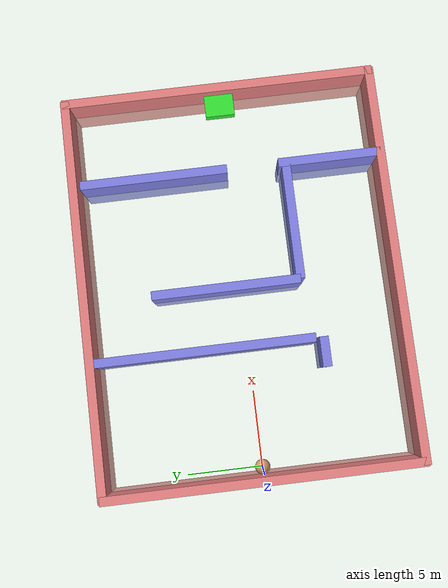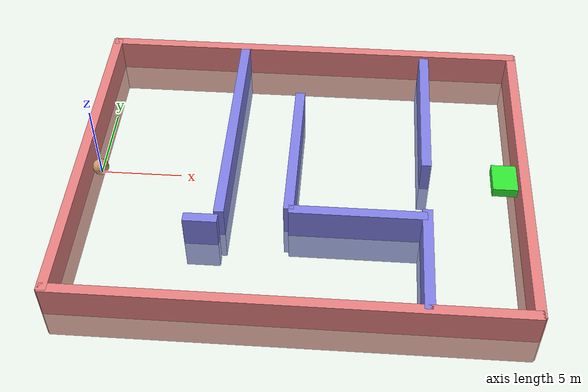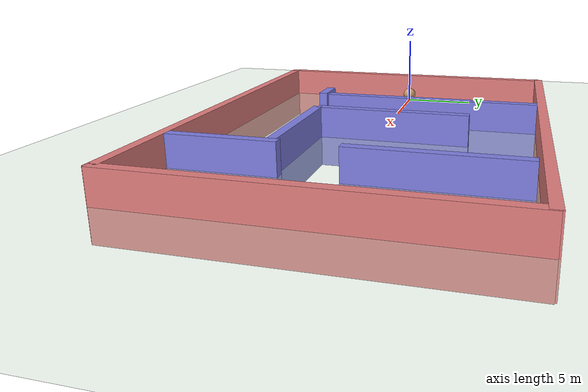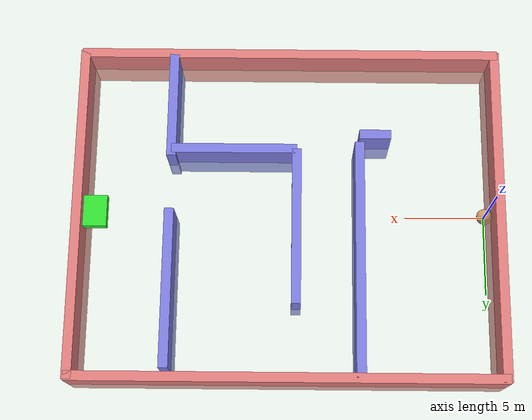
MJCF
<mujoco>
  <compiler inertiafromgeom="true" angle="degree" coordinate="local" />
  <option timestep="0.02" integrator="RK4" />
  <default>
    <joint limited="false" armature="0" damping="0" />
    <geom conaffinity="0" condim="3" margin="0" friction="1 0.5 0.5" rgba="0.8 0.6 0.4 1" density="100" />
  </default>
  <asset>
    <texture type="skybox" builtin="gradient" width="100" height="100" rgb1="1 1 1" rgb2="0 0 0" />
    <texture name="texgeom" type="cube" builtin="flat" mark="cross" width="127" height="1278" rgb1="0.8 0.6 0.4" rgb2="0.8 0.6 0.4" markrgb="1 1 1" random="0.01" />
    <texture name="texplane" type="2d" builtin="checker" rgb1="0 0 0" rgb2="0.8 0.8 0.8" width="100" height="100" />
    <material name='MatPlane' texture="texplane" shininess="1" texrepeat="30 30" specular="1"  reflectance="0.5" />
    <material name='geom' texture="texgeom" texuniform="true" />
  </asset>
  <worldbody>
    <light directional="true" cutoff="100" exponent="1" diffuse="1 1 1" specular=".1 .1 .1" pos="0 0 1.3" dir="-0 0 -1.3" />
    <geom name='floor' material="MatPlane" pos='0 0 0' size='40 40 40' type='plane' conaffinity='1' rgba='0.8 0.9 0.8 1' condim='3' />
    <body name="torso" pos="0 0 0">
      <geom name="pointbody" type="sphere" size="0.5" pos="0 0 0.5" condim="3" />
      <joint name='ballx' type='slide' axis='1 0 0' pos='0 0 0' />
      <joint name='bally' type='slide' axis='0 1 0' pos='0 0 0' />
      <joint name='rot' type='hinge' axis='0 0 1' pos='0 0 0' limited="false" />
    </body>

    <!-- borders /-->
    <geom pos="12.5 -10.5 0" conaffinity="1" rgba="0.9 0.5 0.5 1" size="13.5 0.3 2" type="box" condim="3"/> <!-- bottom /-->
    <geom pos="12.5 10.5 0" conaffinity="1" rgba="0.9 0.5 0.5 1" size="13.5 0.3 2" type="box" condim="3"/> <!-- top /-->
    <geom pos="-0.8 0 0" conaffinity="1" rgba="0.9 0.5 0.5 1" size="0.3 10.7 2" type="box" condim="3"/> <!-- left /-->
    <geom pos="25.8 0 0" conaffinity="1" rgba="0.9 0.5 0.5 1" size="0.3 10.7 2" type="box" condim="3"/> <!-- right /-->

    <!-- first room /-->
    <geom pos="7 -5 0" conaffinity="1" rgba="0.5 0.5 0.9 1" size="1 0.3 2" type="box" condim="3"/>  <!-- small horizontal bottom left -->

    <geom pos="8 3 0" conaffinity="1" rgba="0.5 0.5 0.9 1" size="0.3 7.5 2" type="box" condim="3"/> <!-- vertical big left -->

    <geom pos="16 -4 0" conaffinity="1" rgba="0.5 0.5 0.9 1" size="4 0.3 2" type="box" condim="3"/> <!-- horizontal bottom -->

    <!-- second room /-->

    <!-- vertical bottom center -->
    <!-- small vertical top -->
    <geom pos="12 1 0" conaffinity="1" rgba="0.5 0.5 0.9 1" size="0.3 5 2" type="box" condim="3"/>
    <!-- vertical big center -->

    <geom pos="20 5 0" conaffinity="1" rgba="0.5 0.5 0.9 1" size="0.3 5 2" type="box" condim="3"/>
    <!-- vertical big right -->

    <geom pos="20 -7 0" conaffinity="1" rgba="0.5 0.5 0.9 1" size="0.3 3.5 2" type="box" condim="3"/>
    <!-- vertical small bottom right -->

    <geom pos="25 0 1" conaffinity="0" rgba="0.2 0.9 0.2 1" size="1 1 0.3" type="box"/>

  </worldbody>
  <actuator>
    <!-- Those are just dummy actuators for providing ranges -->
    <motor ctrllimited="true" ctrlrange="-1.0 1.0" joint="ballx" gear="2000"/>
    <motor ctrllimited="true" ctrlrange="-1.0 1.0" joint="bally" gear="2000"/>
  </actuator>
</mujoco>
